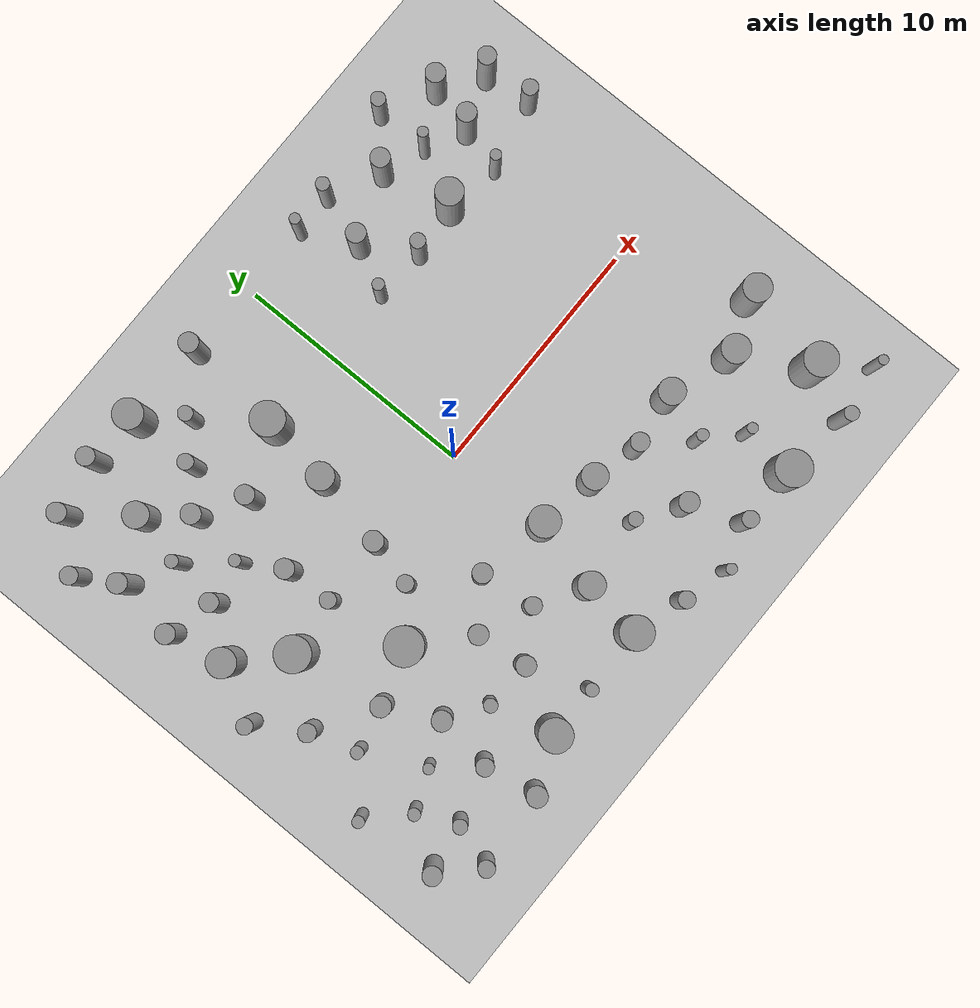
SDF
<?xml version="1.0" ?>
<sdf version="1.5">
  <world name="formation">
    <include>
      <uri>model://sun</uri>
    </include>
    <include>
      <uri>model://ground_plane</uri>
    </include>

    <physics name="default_physics" default="0" type="ode">
      <gravity>0 0 -9.8066</gravity>
      <ode>
        <solver>
          <type>quick</type>
          <iters>10</iters>
          <sor>1.3</sor>
          <use_dynamic_moi_rescaling>0</use_dynamic_moi_rescaling>
        </solver>
        <constraints>
          <cfm>0</cfm>
          <erp>0.2</erp>
          <contact_max_correcting_vel>100</contact_max_correcting_vel>
          <contact_surface_layer>0.001</contact_surface_layer>
        </constraints>
      </ode>
      <max_step_size>0.004</max_step_size>
      <real_time_factor>1</real_time_factor>
      <real_time_update_rate>250</real_time_update_rate>
      <magnetic_field>6.0e-6 2.3e-5 -4.2e-5</magnetic_field>
    </physics>

    <gui>
      <camera name="user_camera">
        <pose>-14 -16 10 0 0.38 2.4</pose>
      </camera>
    </gui>

    <model name="pillar_p8">
      <static>true</static>
      <pose>4 8 1.5 0 0 0</pose>
      <link name="link">
        <collision name="collision"><geometry><cylinder><radius>0.4</radius><length>3</length></cylinder></geometry></collision>
        <visual name="visual"><geometry><cylinder><radius>0.4</radius><length>3</length></cylinder></geometry>
          <material><script><uri>file://media/materials/scripts/gazebo.material</uri><name>Gazebo/Grey</name></script></material>
        </visual>
      </link>
    </model>

    <model name="pillar_pm8">
      <static>true</static>
      <pose>4 -8 1.5 0 0 0</pose>
      <link name="link">
        <collision name="collision"><geometry><cylinder><radius>0.4</radius><length>3</length></cylinder></geometry></collision>
        <visual name="visual"><geometry><cylinder><radius>0.4</radius><length>3</length></cylinder></geometry>
          <material><script><uri>file://media/materials/scripts/gazebo.material</uri><name>Gazebo/Grey</name></script></material>
        </visual>
      </link>
    </model>

    <model name="pillar_w6">
      <static>true</static>
      <pose>-8 6 1.5 0 0 0</pose>
      <link name="link">
        <collision name="collision"><geometry><cylinder><radius>0.4</radius><length>3</length></cylinder></geometry></collision>
        <visual name="visual"><geometry><cylinder><radius>0.4</radius><length>3</length></cylinder></geometry>
          <material><script><uri>file://media/materials/scripts/gazebo.material</uri><name>Gazebo/Grey</name></script></material>
        </visual>
      </link>
    </model>

    <model name="pillar_wm6">
      <static>true</static>
      <pose>-8 -6 1.5 0 0 0</pose>
      <link name="link">
        <collision name="collision"><geometry><cylinder><radius>0.4</radius><length>3</length></cylinder></geometry></collision>
        <visual name="visual"><geometry><cylinder><radius>0.4</radius><length>3</length></cylinder></geometry>
          <material><script><uri>file://media/materials/scripts/gazebo.material</uri><name>Gazebo/Grey</name></script></material>
        </visual>
      </link>
    </model>
    <!-- ==================== OBSTACLES:BEGIN (本区块由 scripts/gen_formation_world.py 生成, 不要手改) ==================== -->
    <!-- 生成参数: seed=20261013  min_gap=1.2  jitter=0.15  darts=1500  big_frac=0.08  rmax=0.8  spacing=2.30 (完整命令见生成时的 stdout) -->
    <!-- 参数: seed=20261013  min_gap=1.20 m  柱子数=77 (本区块新增 73 + 区块外原有 4) -->
    <!-- 候选点统计: 候选点=1599  跳过(留空)=278  放不下=1248  大树=81 -->
    <!-- 半径: 最小 0.20 m / 平均 0.39 m / 最大 0.77 m ; 障碍占地覆盖率 7.4% -->
    <!-- 全场最小表面缝 = 1.200 m ; 可飞临界 1.4 m = 膨胀 0.2x2 + 机体宽 0.7 + 余量 -->
    <!-- 布局: 抖动网格 + 密度场随机留空 (聚簇处更密更粗); 原起飞区 x[-1.8,1.8] y[-1.8,9.8] 与集结空地 P_集结空地 x[3.6,12.6] y[-3.4,4.6] 已挖空 -->
    <!-- 想换布局或看俯视图, 重跑 scripts/gen_formation_world.py 即可 (dry run 只看不写) -->

    <!-- 区块外原有 4 根柱子 (pillar_p8/pm8/w6/wm6, 在上面的手写区里) 原样保留, 它们已经算进全场最小缝和避让保证了, 这里不再重复写一遍 -->
    <!-- 以下 73 根新柱子: 抖动网格铺底 + 密度场随机留空 + 随机飞镖填缝 -->
    <model name="pillar_g000">
      <static>true</static>
      <pose>-6.439 -7.033 1.451 0 0 0</pose>
      <link name="link">
        <collision name="collision"><geometry><cylinder><radius>0.272</radius><length>2.901</length></cylinder></geometry></collision>
        <visual name="visual"><geometry><cylinder><radius>0.272</radius><length>2.901</length></cylinder></geometry>
          <material><script><uri>file://media/materials/scripts/gazebo.material</uri><name>Gazebo/Grey</name></script></material>
        </visual>
      </link>
    </model>

    <model name="pillar_g001">
      <static>true</static>
      <pose>-6.780 -3.198 1.482 0 0 0</pose>
      <link name="link">
        <collision name="collision"><geometry><cylinder><radius>0.774</radius><length>2.965</length></cylinder></geometry></collision>
        <visual name="visual"><geometry><cylinder><radius>0.774</radius><length>2.965</length></cylinder></geometry>
          <material><script><uri>file://media/materials/scripts/gazebo.material</uri><name>Gazebo/Grey</name></script></material>
        </visual>
      </link>
    </model>

    <model name="pillar_g002">
      <static>true</static>
      <pose>7.519 -10.265 1.283 0 0 0</pose>
      <link name="link">
        <collision name="collision"><geometry><cylinder><radius>0.735</radius><length>2.566</length></cylinder></geometry></collision>
        <visual name="visual"><geometry><cylinder><radius>0.735</radius><length>2.566</length></cylinder></geometry>
          <material><script><uri>file://media/materials/scripts/gazebo.material</uri><name>Gazebo/Grey</name></script></material>
        </visual>
      </link>
    </model>

    <model name="pillar_g003">
      <static>true</static>
      <pose>-9.350 7.640 1.276 0 0 0</pose>
      <link name="link">
        <collision name="collision"><geometry><cylinder><radius>0.524</radius><length>2.552</length></cylinder></geometry></collision>
        <visual name="visual"><geometry><cylinder><radius>0.524</radius><length>2.552</length></cylinder></geometry>
          <material><script><uri>file://media/materials/scripts/gazebo.material</uri><name>Gazebo/Grey</name></script></material>
        </visual>
      </link>
    </model>

    <model name="pillar_g004">
      <static>true</static>
      <pose>-3.491 6.023 1.663 0 0 0</pose>
      <link name="link">
        <collision name="collision"><geometry><cylinder><radius>0.691</radius><length>3.327</length></cylinder></geometry></collision>
        <visual name="visual"><geometry><cylinder><radius>0.691</radius><length>3.327</length></cylinder></geometry>
          <material><script><uri>file://media/materials/scripts/gazebo.material</uri><name>Gazebo/Grey</name></script></material>
        </visual>
      </link>
    </model>

    <model name="pillar_g005">
      <static>true</static>
      <pose>-9.551 -0.241 1.728 0 0 0</pose>
      <link name="link">
        <collision name="collision"><geometry><cylinder><radius>0.710</radius><length>3.456</length></cylinder></geometry></collision>
        <visual name="visual"><geometry><cylinder><radius>0.710</radius><length>3.456</length></cylinder></geometry>
          <material><script><uri>file://media/materials/scripts/gazebo.material</uri><name>Gazebo/Grey</name></script></material>
        </visual>
      </link>
    </model>

    <model name="pillar_g006">
      <static>true</static>
      <pose>-9.664 -6.727 1.358 0 0 0</pose>
      <link name="link">
        <collision name="collision"><geometry><cylinder><radius>0.216</radius><length>2.715</length></cylinder></geometry></collision>
        <visual name="visual"><geometry><cylinder><radius>0.216</radius><length>2.715</length></cylinder></geometry>
          <material><script><uri>file://media/materials/scripts/gazebo.material</uri><name>Gazebo/Grey</name></script></material>
        </visual>
      </link>
    </model>

    <model name="pillar_g007">
      <static>true</static>
      <pose>6.846 -4.935 1.453 0 0 0</pose>
      <link name="link">
        <collision name="collision"><geometry><cylinder><radius>0.535</radius><length>2.906</length></cylinder></geometry></collision>
        <visual name="visual"><geometry><cylinder><radius>0.535</radius><length>2.906</length></cylinder></geometry>
          <material><script><uri>file://media/materials/scripts/gazebo.material</uri><name>Gazebo/Grey</name></script></material>
        </visual>
      </link>
    </model>

    <model name="pillar_g008">
      <static>true</static>
      <pose>11.237 -8.474 1.608 0 0 0</pose>
      <link name="link">
        <collision name="collision"><geometry><cylinder><radius>0.678</radius><length>3.217</length></cylinder></geometry></collision>
        <visual name="visual"><geometry><cylinder><radius>0.678</radius><length>3.217</length></cylinder></geometry>
          <material><script><uri>file://media/materials/scripts/gazebo.material</uri><name>Gazebo/Grey</name></script></material>
        </visual>
      </link>
    </model>

    <model name="pillar_g009">
      <static>true</static>
      <pose>-0.956 -9.558 1.284 0 0 0</pose>
      <link name="link">
        <collision name="collision"><geometry><cylinder><radius>0.674</radius><length>2.569</length></cylinder></geometry></collision>
        <visual name="visual"><geometry><cylinder><radius>0.674</radius><length>2.569</length></cylinder></geometry>
          <material><script><uri>file://media/materials/scripts/gazebo.material</uri><name>Gazebo/Grey</name></script></material>
        </visual>
      </link>
    </model>

    <model name="pillar_g010">
      <static>true</static>
      <pose>11.848 -4.970 1.618 0 0 0</pose>
      <link name="link">
        <collision name="collision"><geometry><cylinder><radius>0.570</radius><length>3.235</length></cylinder></geometry></collision>
        <visual name="visual"><geometry><cylinder><radius>0.570</radius><length>3.235</length></cylinder></geometry>
          <material><script><uri>file://media/materials/scripts/gazebo.material</uri><name>Gazebo/Grey</name></script></material>
        </visual>
      </link>
    </model>

    <model name="pillar_g011">
      <static>true</static>
      <pose>-5.764 -9.535 1.694 0 0 0</pose>
      <link name="link">
        <collision name="collision"><geometry><cylinder><radius>0.659</radius><length>3.389</length></cylinder></geometry></collision>
        <visual name="visual"><geometry><cylinder><radius>0.659</radius><length>3.389</length></cylinder></geometry>
          <material><script><uri>file://media/materials/scripts/gazebo.material</uri><name>Gazebo/Grey</name></script></material>
        </visual>
      </link>
    </model>

    <model name="pillar_g012">
      <static>true</static>
      <pose>-12.645 8.109 1.255 0 0 0</pose>
      <link name="link">
        <collision name="collision"><geometry><cylinder><radius>0.355</radius><length>2.510</length></cylinder></geometry></collision>
        <visual name="visual"><geometry><cylinder><radius>0.355</radius><length>2.510</length></cylinder></geometry>
          <material><script><uri>file://media/materials/scripts/gazebo.material</uri><name>Gazebo/Grey</name></script></material>
        </visual>
      </link>
    </model>

    <model name="pillar_g013">
      <static>true</static>
      <pose>0.052 -4.312 1.572 0 0 0</pose>
      <link name="link">
        <collision name="collision"><geometry><cylinder><radius>0.626</radius><length>3.144</length></cylinder></geometry></collision>
        <visual name="visual"><geometry><cylinder><radius>0.626</radius><length>3.144</length></cylinder></geometry>
          <material><script><uri>file://media/materials/scripts/gazebo.material</uri><name>Gazebo/Grey</name></script></material>
        </visual>
      </link>
    </model>

    <model name="pillar_g014">
      <static>true</static>
      <pose>-6.625 10.210 1.504 0 0 0</pose>
      <link name="link">
        <collision name="collision"><geometry><cylinder><radius>0.609</radius><length>3.009</length></cylinder></geometry></collision>
        <visual name="visual"><geometry><cylinder><radius>0.609</radius><length>3.009</length></cylinder></geometry>
          <material><script><uri>file://media/materials/scripts/gazebo.material</uri><name>Gazebo/Grey</name></script></material>
        </visual>
      </link>
    </model>

    <model name="pillar_g015">
      <static>true</static>
      <pose>-9.050 -3.928 1.251 0 0 0</pose>
      <link name="link">
        <collision name="collision"><geometry><cylinder><radius>0.411</radius><length>2.502</length></cylinder></geometry></collision>
        <visual name="visual"><geometry><cylinder><radius>0.411</radius><length>2.502</length></cylinder></geometry>
          <material><script><uri>file://media/materials/scripts/gazebo.material</uri><name>Gazebo/Grey</name></script></material>
        </visual>
      </link>
    </model>

    <model name="pillar_g016">
      <static>true</static>
      <pose>9.641 -5.788 1.382 0 0 0</pose>
      <link name="link">
        <collision name="collision"><geometry><cylinder><radius>0.582</radius><length>2.764</length></cylinder></geometry></collision>
        <visual name="visual"><geometry><cylinder><radius>0.582</radius><length>2.764</length></cylinder></geometry>
          <material><script><uri>file://media/materials/scripts/gazebo.material</uri><name>Gazebo/Grey</name></script></material>
        </visual>
      </link>
    </model>

    <model name="pillar_g017">
      <static>true</static>
      <pose>-4.964 -1.777 1.575 0 0 0</pose>
      <link name="link">
        <collision name="collision"><geometry><cylinder><radius>0.332</radius><length>3.150</length></cylinder></geometry></collision>
        <visual name="visual"><geometry><cylinder><radius>0.332</radius><length>3.150</length></cylinder></geometry>
          <material><script><uri>file://media/materials/scripts/gazebo.material</uri><name>Gazebo/Grey</name></script></material>
        </visual>
      </link>
    </model>

    <model name="pillar_g018">
      <static>true</static>
      <pose>-11.475 1.605 1.554 0 0 0</pose>
      <link name="link">
        <collision name="collision"><geometry><cylinder><radius>0.583</radius><length>3.108</length></cylinder></geometry></collision>
        <visual name="visual"><geometry><cylinder><radius>0.583</radius><length>3.108</length></cylinder></geometry>
          <material><script><uri>file://media/materials/scripts/gazebo.material</uri><name>Gazebo/Grey</name></script></material>
        </visual>
      </link>
    </model>

    <model name="pillar_g019">
      <static>true</static>
      <pose>7.674 -8.117 1.408 0 0 0</pose>
      <link name="link">
        <collision name="collision"><geometry><cylinder><radius>0.218</radius><length>2.815</length></cylinder></geometry></collision>
        <visual name="visual"><geometry><cylinder><radius>0.218</radius><length>2.815</length></cylinder></geometry>
          <material><script><uri>file://media/materials/scripts/gazebo.material</uri><name>Gazebo/Grey</name></script></material>
        </visual>
      </link>
    </model>

    <model name="pillar_g020">
      <static>true</static>
      <pose>7.374 6.219 1.692 0 0 0</pose>
      <link name="link">
        <collision name="collision"><geometry><cylinder><radius>0.564</radius><length>3.384</length></cylinder></geometry></collision>
        <visual name="visual"><geometry><cylinder><radius>0.564</radius><length>3.384</length></cylinder></geometry>
          <material><script><uri>file://media/materials/scripts/gazebo.material</uri><name>Gazebo/Grey</name></script></material>
        </visual>
      </link>
    </model>

    <model name="pillar_g021">
      <static>true</static>
      <pose>-3.896 3.219 1.389 0 0 0</pose>
      <link name="link">
        <collision name="collision"><geometry><cylinder><radius>0.559</radius><length>2.777</length></cylinder></geometry></collision>
        <visual name="visual"><geometry><cylinder><radius>0.559</radius><length>2.777</length></cylinder></geometry>
          <material><script><uri>file://media/materials/scripts/gazebo.material</uri><name>Gazebo/Grey</name></script></material>
        </visual>
      </link>
    </model>

    <model name="pillar_g022">
      <static>true</static>
      <pose>-0.694 -7.119 1.705 0 0 0</pose>
      <link name="link">
        <collision name="collision"><geometry><cylinder><radius>0.537</radius><length>3.410</length></cylinder></geometry></collision>
        <visual name="visual"><geometry><cylinder><radius>0.537</radius><length>3.410</length></cylinder></geometry>
          <material><script><uri>file://media/materials/scripts/gazebo.material</uri><name>Gazebo/Grey</name></script></material>
        </visual>
      </link>
    </model>

    <model name="pillar_g023">
      <static>true</static>
      <pose>-4.510 0.106 1.708 0 0 0</pose>
      <link name="link">
        <collision name="collision"><geometry><cylinder><radius>0.405</radius><length>3.416</length></cylinder></geometry></collision>
        <visual name="visual"><geometry><cylinder><radius>0.405</radius><length>3.416</length></cylinder></geometry>
          <material><script><uri>file://media/materials/scripts/gazebo.material</uri><name>Gazebo/Grey</name></script></material>
        </visual>
      </link>
    </model>

    <model name="pillar_g024">
      <static>true</static>
      <pose>2.527 -4.702 1.560 0 0 0</pose>
      <link name="link">
        <collision name="collision"><geometry><cylinder><radius>0.524</radius><length>3.120</length></cylinder></geometry></collision>
        <visual name="visual"><geometry><cylinder><radius>0.524</radius><length>3.120</length></cylinder></geometry>
          <material><script><uri>file://media/materials/scripts/gazebo.material</uri><name>Gazebo/Grey</name></script></material>
        </visual>
      </link>
    </model>

    <model name="pillar_g025">
      <static>true</static>
      <pose>4.564 -5.191 1.613 0 0 0</pose>
      <link name="link">
        <collision name="collision"><geometry><cylinder><radius>0.370</radius><length>3.227</length></cylinder></geometry></collision>
        <visual name="visual"><geometry><cylinder><radius>0.370</radius><length>3.227</length></cylinder></geometry>
          <material><script><uri>file://media/materials/scripts/gazebo.material</uri><name>Gazebo/Grey</name></script></material>
        </visual>
      </link>
    </model>

    <model name="pillar_g026">
      <static>true</static>
      <pose>-3.643 -9.565 1.389 0 0 0</pose>
      <link name="link">
        <collision name="collision"><geometry><cylinder><radius>0.262</radius><length>2.778</length></cylinder></geometry></collision>
        <visual name="visual"><geometry><cylinder><radius>0.262</radius><length>2.778</length></cylinder></geometry>
          <material><script><uri>file://media/materials/scripts/gazebo.material</uri><name>Gazebo/Grey</name></script></material>
        </visual>
      </link>
    </model>

    <model name="pillar_g027">
      <static>true</static>
      <pose>3.043 6.138 1.402 0 0 0</pose>
      <link name="link">
        <collision name="collision"><geometry><cylinder><radius>0.243</radius><length>2.805</length></cylinder></geometry></collision>
        <visual name="visual"><geometry><cylinder><radius>0.243</radius><length>2.805</length></cylinder></geometry>
          <material><script><uri>file://media/materials/scripts/gazebo.material</uri><name>Gazebo/Grey</name></script></material>
        </visual>
      </link>
    </model>

    <model name="pillar_g028">
      <static>true</static>
      <pose>-11.133 -10.670 1.290 0 0 0</pose>
      <link name="link">
        <collision name="collision"><geometry><cylinder><radius>0.330</radius><length>2.579</length></cylinder></geometry></collision>
        <visual name="visual"><geometry><cylinder><radius>0.330</radius><length>2.579</length></cylinder></geometry>
          <material><script><uri>file://media/materials/scripts/gazebo.material</uri><name>Gazebo/Grey</name></script></material>
        </visual>
      </link>
    </model>

    <model name="pillar_g029">
      <static>true</static>
      <pose>-7.942 -10.455 1.312 0 0 0</pose>
      <link name="link">
        <collision name="collision"><geometry><cylinder><radius>0.412</radius><length>2.625</length></cylinder></geometry></collision>
        <visual name="visual"><geometry><cylinder><radius>0.412</radius><length>2.625</length></cylinder></geometry>
          <material><script><uri>file://media/materials/scripts/gazebo.material</uri><name>Gazebo/Grey</name></script></material>
        </visual>
      </link>
    </model>

    <model name="pillar_g030">
      <static>true</static>
      <pose>10.669 9.605 1.466 0 0 0</pose>
      <link name="link">
        <collision name="collision"><geometry><cylinder><radius>0.400</radius><length>2.931</length></cylinder></geometry></collision>
        <visual name="visual"><geometry><cylinder><radius>0.400</radius><length>2.931</length></cylinder></geometry>
          <material><script><uri>file://media/materials/scripts/gazebo.material</uri><name>Gazebo/Grey</name></script></material>
        </visual>
      </link>
    </model>

    <model name="pillar_g031">
      <static>true</static>
      <pose>-11.628 6.394 1.710 0 0 0</pose>
      <link name="link">
        <collision name="collision"><geometry><cylinder><radius>0.398</radius><length>3.421</length></cylinder></geometry></collision>
        <visual name="visual"><geometry><cylinder><radius>0.398</radius><length>3.421</length></cylinder></geometry>
          <material><script><uri>file://media/materials/scripts/gazebo.material</uri><name>Gazebo/Grey</name></script></material>
        </visual>
      </link>
    </model>

    <model name="pillar_g032">
      <static>true</static>
      <pose>-10.872 -4.323 1.347 0 0 0</pose>
      <link name="link">
        <collision name="collision"><geometry><cylinder><radius>0.253</radius><length>2.693</length></cylinder></geometry></collision>
        <visual name="visual"><geometry><cylinder><radius>0.253</radius><length>2.693</length></cylinder></geometry>
          <material><script><uri>file://media/materials/scripts/gazebo.material</uri><name>Gazebo/Grey</name></script></material>
        </visual>
      </link>
    </model>

    <model name="pillar_g033">
      <static>true</static>
      <pose>-3.151 10.172 1.538 0 0 0</pose>
      <link name="link">
        <collision name="collision"><geometry><cylinder><radius>0.397</radius><length>3.077</length></cylinder></geometry></collision>
        <visual name="visual"><geometry><cylinder><radius>0.397</radius><length>3.077</length></cylinder></geometry>
          <material><script><uri>file://media/materials/scripts/gazebo.material</uri><name>Gazebo/Grey</name></script></material>
        </visual>
      </link>
    </model>

    <model name="pillar_g034">
      <static>true</static>
      <pose>10.163 7.665 1.622 0 0 0</pose>
      <link name="link">
        <collision name="collision"><geometry><cylinder><radius>0.397</radius><length>3.244</length></cylinder></geometry></collision>
        <visual name="visual"><geometry><cylinder><radius>0.397</radius><length>3.244</length></cylinder></geometry>
          <material><script><uri>file://media/materials/scripts/gazebo.material</uri><name>Gazebo/Grey</name></script></material>
        </visual>
      </link>
    </model>

    <model name="pillar_g035">
      <static>true</static>
      <pose>-4.718 -5.049 1.502 0 0 0</pose>
      <link name="link">
        <collision name="collision"><geometry><cylinder><radius>0.395</radius><length>3.004</length></cylinder></geometry></collision>
        <visual name="visual"><geometry><cylinder><radius>0.395</radius><length>3.004</length></cylinder></geometry>
          <material><script><uri>file://media/materials/scripts/gazebo.material</uri><name>Gazebo/Grey</name></script></material>
        </visual>
      </link>
    </model>

    <model name="pillar_g036">
      <static>true</static>
      <pose>6.784 9.106 1.549 0 0 0</pose>
      <link name="link">
        <collision name="collision"><geometry><cylinder><radius>0.395</radius><length>3.099</length></cylinder></geometry></collision>
        <visual name="visual"><geometry><cylinder><radius>0.395</radius><length>3.099</length></cylinder></geometry>
          <material><script><uri>file://media/materials/scripts/gazebo.material</uri><name>Gazebo/Grey</name></script></material>
        </visual>
      </link>
    </model>

    <model name="pillar_g037">
      <static>true</static>
      <pose>-10.554 -8.946 1.381 0 0 0</pose>
      <link name="link">
        <collision name="collision"><geometry><cylinder><radius>0.288</radius><length>2.762</length></cylinder></geometry></collision>
        <visual name="visual"><geometry><cylinder><radius>0.288</radius><length>2.762</length></cylinder></geometry>
          <material><script><uri>file://media/materials/scripts/gazebo.material</uri><name>Gazebo/Grey</name></script></material>
        </visual>
      </link>
    </model>

    <model name="pillar_g038">
      <static>true</static>
      <pose>9.651 5.825 1.477 0 0 0</pose>
      <link name="link">
        <collision name="collision"><geometry><cylinder><radius>0.225</radius><length>2.954</length></cylinder></geometry></collision>
        <visual name="visual"><geometry><cylinder><radius>0.225</radius><length>2.954</length></cylinder></geometry>
          <material><script><uri>file://media/materials/scripts/gazebo.material</uri><name>Gazebo/Grey</name></script></material>
        </visual>
      </link>
    </model>

    <model name="pillar_g039">
      <static>true</static>
      <pose>-12.016 3.929 1.342 0 0 0</pose>
      <link name="link">
        <collision name="collision"><geometry><cylinder><radius>0.393</radius><length>2.684</length></cylinder></geometry></collision>
        <visual name="visual"><geometry><cylinder><radius>0.393</radius><length>2.684</length></cylinder></geometry>
          <material><script><uri>file://media/materials/scripts/gazebo.material</uri><name>Gazebo/Grey</name></script></material>
        </visual>
      </link>
    </model>

    <model name="pillar_g040">
      <static>true</static>
      <pose>-2.873 -3.737 1.529 0 0 0</pose>
      <link name="link">
        <collision name="collision"><geometry><cylinder><radius>0.393</radius><length>3.058</length></cylinder></geometry></collision>
        <visual name="visual"><geometry><cylinder><radius>0.393</radius><length>3.058</length></cylinder></geometry>
          <material><script><uri>file://media/materials/scripts/gazebo.material</uri><name>Gazebo/Grey</name></script></material>
        </visual>
      </link>
    </model>

    <model name="pillar_g041">
      <static>true</static>
      <pose>2.977 10.135 1.464 0 0 0</pose>
      <link name="link">
        <collision name="collision"><geometry><cylinder><radius>0.224</radius><length>2.928</length></cylinder></geometry></collision>
        <visual name="visual"><geometry><cylinder><radius>0.224</radius><length>2.928</length></cylinder></geometry>
          <material><script><uri>file://media/materials/scripts/gazebo.material</uri><name>Gazebo/Grey</name></script></material>
        </visual>
      </link>
    </model>

    <model name="pillar_g042">
      <static>true</static>
      <pose>-11.119 9.926 1.406 0 0 0</pose>
      <link name="link">
        <collision name="collision"><geometry><cylinder><radius>0.392</radius><length>2.811</length></cylinder></geometry></collision>
        <visual name="visual"><geometry><cylinder><radius>0.392</radius><length>2.811</length></cylinder></geometry>
          <material><script><uri>file://media/materials/scripts/gazebo.material</uri><name>Gazebo/Grey</name></script></material>
        </visual>
      </link>
    </model>

    <model name="pillar_g043">
      <static>true</static>
      <pose>-7.353 1.994 1.672 0 0 0</pose>
      <link name="link">
        <collision name="collision"><geometry><cylinder><radius>0.392</radius><length>3.344</length></cylinder></geometry></collision>
        <visual name="visual"><geometry><cylinder><radius>0.392</radius><length>3.344</length></cylinder></geometry>
          <material><script><uri>file://media/materials/scripts/gazebo.material</uri><name>Gazebo/Grey</name></script></material>
        </visual>
      </link>
    </model>

    <model name="pillar_g044">
      <static>true</static>
      <pose>-4.494 -7.112 1.617 0 0 0</pose>
      <link name="link">
        <collision name="collision"><geometry><cylinder><radius>0.391</radius><length>3.233</length></cylinder></geometry></collision>
        <visual name="visual"><geometry><cylinder><radius>0.391</radius><length>3.233</length></cylinder></geometry>
          <material><script><uri>file://media/materials/scripts/gazebo.material</uri><name>Gazebo/Grey</name></script></material>
        </visual>
      </link>
    </model>

    <model name="pillar_g045">
      <static>true</static>
      <pose>-5.263 8.602 1.408 0 0 0</pose>
      <link name="link">
        <collision name="collision"><geometry><cylinder><radius>0.299</radius><length>2.816</length></cylinder></geometry></collision>
        <visual name="visual"><geometry><cylinder><radius>0.299</radius><length>2.816</length></cylinder></geometry>
          <material><script><uri>file://media/materials/scripts/gazebo.material</uri><name>Gazebo/Grey</name></script></material>
        </visual>
      </link>
    </model>

    <model name="pillar_g046">
      <static>true</static>
      <pose>-6.183 4.856 1.698 0 0 0</pose>
      <link name="link">
        <collision name="collision"><geometry><cylinder><radius>0.385</radius><length>3.396</length></cylinder></geometry></collision>
        <visual name="visual"><geometry><cylinder><radius>0.385</radius><length>3.396</length></cylinder></geometry>
          <material><script><uri>file://media/materials/scripts/gazebo.material</uri><name>Gazebo/Grey</name></script></material>
        </visual>
      </link>
    </model>

    <model name="pillar_g047">
      <static>true</static>
      <pose>-12.681 -0.543 1.638 0 0 0</pose>
      <link name="link">
        <collision name="collision"><geometry><cylinder><radius>0.319</radius><length>3.277</length></cylinder></geometry></collision>
        <visual name="visual"><geometry><cylinder><radius>0.319</radius><length>3.277</length></cylinder></geometry>
          <material><script><uri>file://media/materials/scripts/gazebo.material</uri><name>Gazebo/Grey</name></script></material>
        </visual>
      </link>
    </model>

    <model name="pillar_g048">
      <static>true</static>
      <pose>-12.760 -5.948 1.413 0 0 0</pose>
      <link name="link">
        <collision name="collision"><geometry><cylinder><radius>0.240</radius><length>2.827</length></cylinder></geometry></collision>
        <visual name="visual"><geometry><cylinder><radius>0.240</radius><length>2.827</length></cylinder></geometry>
          <material><script><uri>file://media/materials/scripts/gazebo.material</uri><name>Gazebo/Grey</name></script></material>
        </visual>
      </link>
    </model>

    <model name="pillar_g049">
      <static>true</static>
      <pose>-7.259 0.076 1.286 0 0 0</pose>
      <link name="link">
        <collision name="collision"><geometry><cylinder><radius>0.328</radius><length>2.572</length></cylinder></geometry></collision>
        <visual name="visual"><geometry><cylinder><radius>0.328</radius><length>2.572</length></cylinder></geometry>
          <material><script><uri>file://media/materials/scripts/gazebo.material</uri><name>Gazebo/Grey</name></script></material>
        </visual>
      </link>
    </model>

    <model name="pillar_g050">
      <static>true</static>
      <pose>-11.278 -7.369 1.355 0 0 0</pose>
      <link name="link">
        <collision name="collision"><geometry><cylinder><radius>0.247</radius><length>2.709</length></cylinder></geometry></collision>
        <visual name="visual"><geometry><cylinder><radius>0.247</radius><length>2.709</length></cylinder></geometry>
          <material><script><uri>file://media/materials/scripts/gazebo.material</uri><name>Gazebo/Grey</name></script></material>
        </visual>
      </link>
    </model>

    <model name="pillar_g051">
      <static>true</static>
      <pose>8.539 8.468 1.606 0 0 0</pose>
      <link name="link">
        <collision name="collision"><geometry><cylinder><radius>0.215</radius><length>3.212</length></cylinder></geometry></collision>
        <visual name="visual"><geometry><cylinder><radius>0.215</radius><length>3.212</length></cylinder></geometry>
          <material><script><uri>file://media/materials/scripts/gazebo.material</uri><name>Gazebo/Grey</name></script></material>
        </visual>
      </link>
    </model>

    <model name="pillar_g052">
      <static>true</static>
      <pose>-12.519 -9.250 1.557 0 0 0</pose>
      <link name="link">
        <collision name="collision"><geometry><cylinder><radius>0.377</radius><length>3.114</length></cylinder></geometry></collision>
        <visual name="visual"><geometry><cylinder><radius>0.377</radius><length>3.114</length></cylinder></geometry>
          <material><script><uri>file://media/materials/scripts/gazebo.material</uri><name>Gazebo/Grey</name></script></material>
        </visual>
      </link>
    </model>

    <model name="pillar_g053">
      <static>true</static>
      <pose>-10.067 3.375 1.548 0 0 0</pose>
      <link name="link">
        <collision name="collision"><geometry><cylinder><radius>0.375</radius><length>3.095</length></cylinder></geometry></collision>
        <visual name="visual"><geometry><cylinder><radius>0.375</radius><length>3.095</length></cylinder></geometry>
          <material><script><uri>file://media/materials/scripts/gazebo.material</uri><name>Gazebo/Grey</name></script></material>
        </visual>
      </link>
    </model>

    <model name="pillar_g054">
      <static>true</static>
      <pose>-8.809 10.333 1.656 0 0 0</pose>
      <link name="link">
        <collision name="collision"><geometry><cylinder><radius>0.373</radius><length>3.312</length></cylinder></geometry></collision>
        <visual name="visual"><geometry><cylinder><radius>0.373</radius><length>3.312</length></cylinder></geometry>
          <material><script><uri>file://media/materials/scripts/gazebo.material</uri><name>Gazebo/Grey</name></script></material>
        </visual>
      </link>
    </model>

    <model name="pillar_g055">
      <static>true</static>
      <pose>12.332 8.442 1.634 0 0 0</pose>
      <link name="link">
        <collision name="collision"><geometry><cylinder><radius>0.373</radius><length>3.267</length></cylinder></geometry></collision>
        <visual name="visual"><geometry><cylinder><radius>0.373</radius><length>3.267</length></cylinder></geometry>
          <material><script><uri>file://media/materials/scripts/gazebo.material</uri><name>Gazebo/Grey</name></script></material>
        </visual>
      </link>
    </model>

    <model name="pillar_g056">
      <static>true</static>
      <pose>1.159 -10.206 1.337 0 0 0</pose>
      <link name="link">
        <collision name="collision"><geometry><cylinder><radius>0.337</radius><length>2.674</length></cylinder></geometry></collision>
        <visual name="visual"><geometry><cylinder><radius>0.337</radius><length>2.674</length></cylinder></geometry>
          <material><script><uri>file://media/materials/scripts/gazebo.material</uri><name>Gazebo/Grey</name></script></material>
        </visual>
      </link>
    </model>

    <model name="pillar_g057">
      <static>true</static>
      <pose>-8.262 3.582 1.721 0 0 0</pose>
      <link name="link">
        <collision name="collision"><geometry><cylinder><radius>0.238</radius><length>3.442</length></cylinder></geometry></collision>
        <visual name="visual"><geometry><cylinder><radius>0.238</radius><length>3.442</length></cylinder></geometry>
          <material><script><uri>file://media/materials/scripts/gazebo.material</uri><name>Gazebo/Grey</name></script></material>
        </visual>
      </link>
    </model>

    <model name="pillar_g058">
      <static>true</static>
      <pose>-11.459 -2.449 1.447 0 0 0</pose>
      <link name="link">
        <collision name="collision"><geometry><cylinder><radius>0.356</radius><length>2.894</length></cylinder></geometry></collision>
        <visual name="visual"><geometry><cylinder><radius>0.356</radius><length>2.894</length></cylinder></geometry>
          <material><script><uri>file://media/materials/scripts/gazebo.material</uri><name>Gazebo/Grey</name></script></material>
        </visual>
      </link>
    </model>

    <model name="pillar_g059">
      <static>true</static>
      <pose>4.678 10.198 1.427 0 0 0</pose>
      <link name="link">
        <collision name="collision"><geometry><cylinder><radius>0.277</radius><length>2.854</length></cylinder></geometry></collision>
        <visual name="visual"><geometry><cylinder><radius>0.277</radius><length>2.854</length></cylinder></geometry>
          <material><script><uri>file://media/materials/scripts/gazebo.material</uri><name>Gazebo/Grey</name></script></material>
        </visual>
      </link>
    </model>

    <model name="pillar_g060">
      <static>true</static>
      <pose>12.799 -10.315 1.377 0 0 0</pose>
      <link name="link">
        <collision name="collision"><geometry><cylinder><radius>0.201</radius><length>2.754</length></cylinder></geometry></collision>
        <visual name="visual"><geometry><cylinder><radius>0.201</radius><length>2.754</length></cylinder></geometry>
          <material><script><uri>file://media/materials/scripts/gazebo.material</uri><name>Gazebo/Grey</name></script></material>
        </visual>
      </link>
    </model>

    <model name="pillar_g061">
      <static>true</static>
      <pose>-6.631 7.342 1.658 0 0 0</pose>
      <link name="link">
        <collision name="collision"><geometry><cylinder><radius>0.317</radius><length>3.317</length></cylinder></geometry></collision>
        <visual name="visual"><geometry><cylinder><radius>0.317</radius><length>3.317</length></cylinder></geometry>
          <material><script><uri>file://media/materials/scripts/gazebo.material</uri><name>Gazebo/Grey</name></script></material>
        </visual>
      </link>
    </model>

    <model name="pillar_g062">
      <static>true</static>
      <pose>-8.272 -8.251 1.713 0 0 0</pose>
      <link name="link">
        <collision name="collision"><geometry><cylinder><radius>0.348</radius><length>3.426</length></cylinder></geometry></collision>
        <visual name="visual"><geometry><cylinder><radius>0.348</radius><length>3.426</length></cylinder></geometry>
          <material><script><uri>file://media/materials/scripts/gazebo.material</uri><name>Gazebo/Grey</name></script></material>
        </visual>
      </link>
    </model>

    <model name="pillar_g063">
      <static>true</static>
      <pose>-2.619 -5.941 1.441 0 0 0</pose>
      <link name="link">
        <collision name="collision"><geometry><cylinder><radius>0.345</radius><length>2.883</length></cylinder></geometry></collision>
        <visual name="visual"><geometry><cylinder><radius>0.345</radius><length>2.883</length></cylinder></geometry>
          <material><script><uri>file://media/materials/scripts/gazebo.material</uri><name>Gazebo/Grey</name></script></material>
        </visual>
      </link>
    </model>

    <model name="pillar_g064">
      <static>true</static>
      <pose>-9.753 5.368 1.700 0 0 0</pose>
      <link name="link">
        <collision name="collision"><geometry><cylinder><radius>0.263</radius><length>3.401</length></cylinder></geometry></collision>
        <visual name="visual"><geometry><cylinder><radius>0.263</radius><length>3.401</length></cylinder></geometry>
          <material><script><uri>file://media/materials/scripts/gazebo.material</uri><name>Gazebo/Grey</name></script></material>
        </visual>
      </link>
    </model>

    <model name="pillar_g065">
      <static>true</static>
      <pose>3.085 -10.779 1.368 0 0 0</pose>
      <link name="link">
        <collision name="collision"><geometry><cylinder><radius>0.221</radius><length>2.737</length></cylinder></geometry></collision>
        <visual name="visual"><geometry><cylinder><radius>0.221</radius><length>2.737</length></cylinder></geometry>
          <material><script><uri>file://media/materials/scripts/gazebo.material</uri><name>Gazebo/Grey</name></script></material>
        </visual>
      </link>
    </model>

    <model name="pillar_g066">
      <static>true</static>
      <pose>4.929 -10.144 1.543 0 0 0</pose>
      <link name="link">
        <collision name="collision"><geometry><cylinder><radius>0.333</radius><length>3.087</length></cylinder></geometry></collision>
        <visual name="visual"><geometry><cylinder><radius>0.333</radius><length>3.087</length></cylinder></geometry>
          <material><script><uri>file://media/materials/scripts/gazebo.material</uri><name>Gazebo/Grey</name></script></material>
        </visual>
      </link>
    </model>

    <model name="pillar_g067">
      <static>true</static>
      <pose>12.562 6.506 1.352 0 0 0</pose>
      <link name="link">
        <collision name="collision"><geometry><cylinder><radius>0.329</radius><length>2.704</length></cylinder></geometry></collision>
        <visual name="visual"><geometry><cylinder><radius>0.329</radius><length>2.704</length></cylinder></geometry>
          <material><script><uri>file://media/materials/scripts/gazebo.material</uri><name>Gazebo/Grey</name></script></material>
        </visual>
      </link>
    </model>

    <model name="pillar_g068">
      <static>true</static>
      <pose>8.565 10.704 1.322 0 0 0</pose>
      <link name="link">
        <collision name="collision"><geometry><cylinder><radius>0.296</radius><length>2.644</length></cylinder></geometry></collision>
        <visual name="visual"><geometry><cylinder><radius>0.296</radius><length>2.644</length></cylinder></geometry>
          <material><script><uri>file://media/materials/scripts/gazebo.material</uri><name>Gazebo/Grey</name></script></material>
        </visual>
      </link>
    </model>

    <model name="pillar_g069">
      <static>true</static>
      <pose>5.221 5.991 1.553 0 0 0</pose>
      <link name="link">
        <collision name="collision"><geometry><cylinder><radius>0.308</radius><length>3.107</length></cylinder></geometry></collision>
        <visual name="visual"><geometry><cylinder><radius>0.308</radius><length>3.107</length></cylinder></geometry>
          <material><script><uri>file://media/materials/scripts/gazebo.material</uri><name>Gazebo/Grey</name></script></material>
        </visual>
      </link>
    </model>

    <model name="pillar_g070">
      <static>true</static>
      <pose>10.367 -10.598 1.586 0 0 0</pose>
      <link name="link">
        <collision name="collision"><geometry><cylinder><radius>0.292</radius><length>3.171</length></cylinder></geometry></collision>
        <visual name="visual"><geometry><cylinder><radius>0.292</radius><length>3.171</length></cylinder></geometry>
          <material><script><uri>file://media/materials/scripts/gazebo.material</uri><name>Gazebo/Grey</name></script></material>
        </visual>
      </link>
    </model>

    <model name="pillar_g071">
      <static>true</static>
      <pose>2.306 -6.879 1.259 0 0 0</pose>
      <link name="link">
        <collision name="collision"><geometry><cylinder><radius>0.289</radius><length>2.518</length></cylinder></geometry></collision>
        <visual name="visual"><geometry><cylinder><radius>0.289</radius><length>2.518</length></cylinder></geometry>
          <material><script><uri>file://media/materials/scripts/gazebo.material</uri><name>Gazebo/Grey</name></script></material>
        </visual>
      </link>
    </model>

    <model name="pillar_g072">
      <static>true</static>
      <pose>6.273 -6.825 1.497 0 0 0</pose>
      <link name="link">
        <collision name="collision"><geometry><cylinder><radius>0.240</radius><length>2.994</length></cylinder></geometry></collision>
        <visual name="visual"><geometry><cylinder><radius>0.240</radius><length>2.994</length></cylinder></geometry>
          <material><script><uri>file://media/materials/scripts/gazebo.material</uri><name>Gazebo/Grey</name></script></material>
        </visual>
      </link>
    </model>

    <!-- ==================== OBSTACLES:END ==================== -->
  </world>
</sdf>
